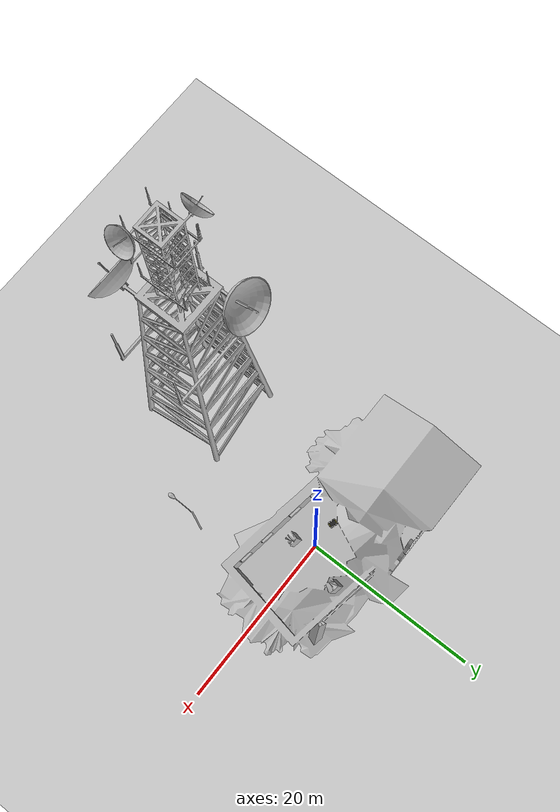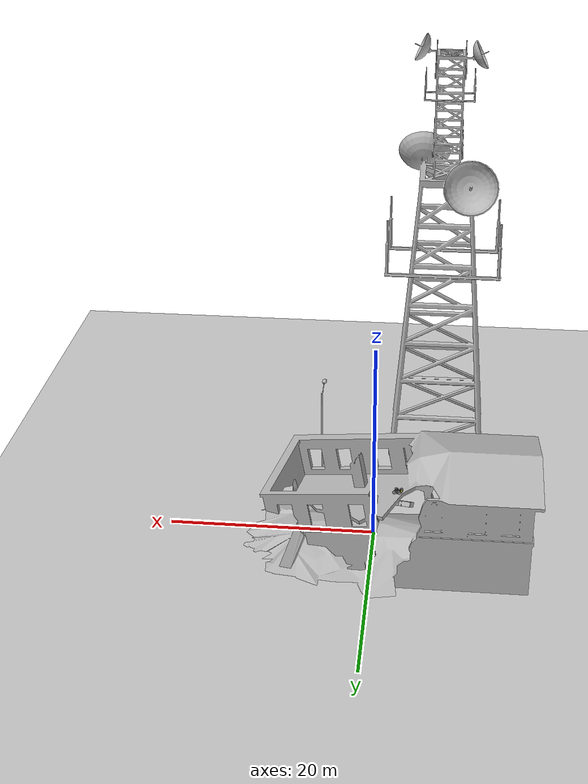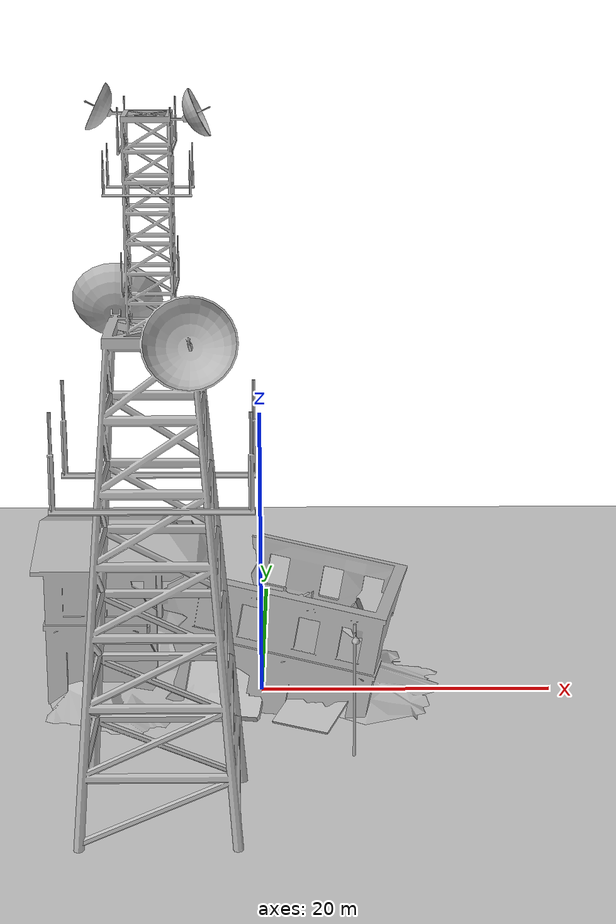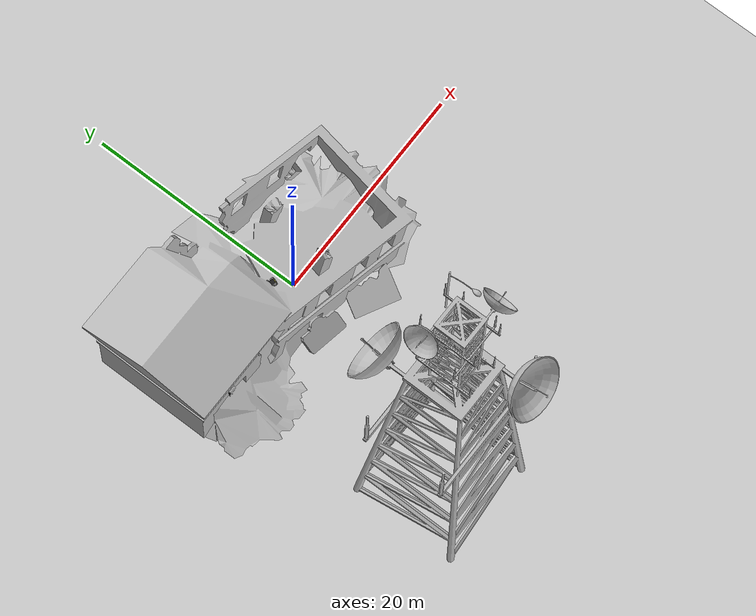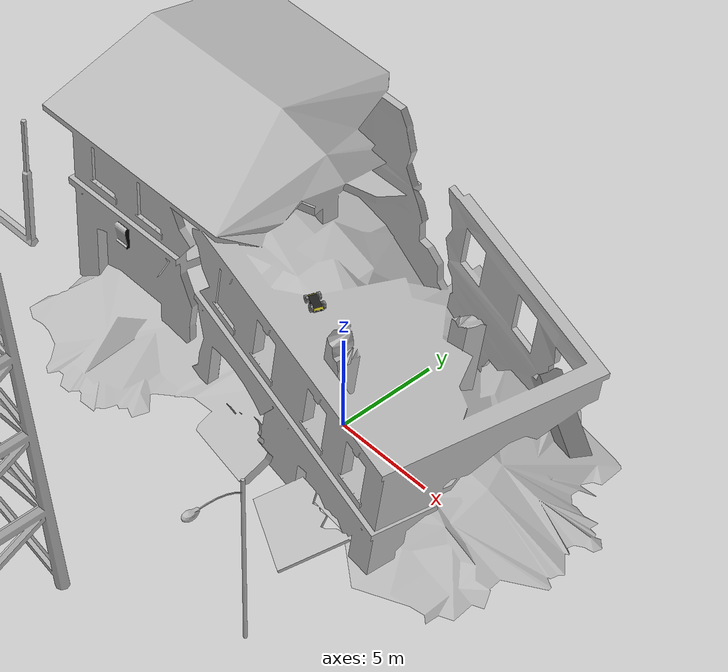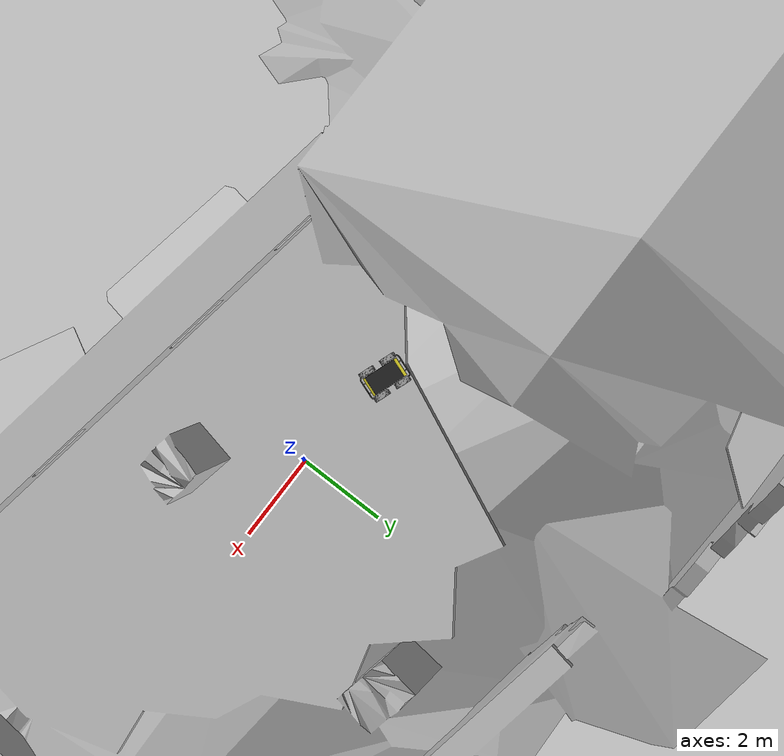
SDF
<sdf version="1.7">
 <world name="default">
  <light name="sun" type="directional">
   <pose>0 0 10 0 -0 0</pose>
   <diffuse>0.8 0.8 0.8 1</diffuse>
   <specular>0.2 0.2 0.2 1</specular>
   <attenuation>
    <range>1000</range>
    <constant>0.9</constant>
    <linear>0.01</linear>
    <quadratic>0.001</quadratic>
   </attenuation>
   <direction>-0.5 0.1 -0.9</direction>
   <spot><inner_angle>0</inner_angle><outer_angle>0</outer_angle><falloff>0</falloff></spot>
  </light>
  <model name="ground_plane">
   <static>1</static>
   <link name="link">
    <collision name="collision">
     <geometry><plane><normal>0 0 1</normal><size>100 100</size></plane></geometry>
     <surface><friction><ode><mu>100</mu><mu2>50</mu2></ode></friction></surface>
    </collision>
    <visual name="visual">
     <cast_shadows>0</cast_shadows>
     <geometry><plane><normal>0 0 1</normal><size>100 100</size></plane></geometry>
     <material>
      <script><uri>file://media/materials/scripts/gazebo.material</uri><name>Gazebo/Grey</name></script>
     </material>
    </visual>
   </link>
  </model>
  <gravity>0 0 -9.8</gravity>
  <magnetic_field>6e-06 2.3e-05 -4.2e-05</magnetic_field>
  <atmosphere type="adiabatic"/>
  <physics type="ode">
   <max_step_size>0.001</max_step_size>
   <real_time_factor>1</real_time_factor>
   <real_time_update_rate>1000</real_time_update_rate>
  </physics>
  <scene><ambient>0.4 0.4 0.4 1</ambient><background>0.7 0.7 0.7 1</background><shadows>1</shadows></scene>
  <spherical_coordinates>
   <surface_model>EARTH_WGS84</surface_model>
   <latitude_deg>0</latitude_deg>
   <longitude_deg>0</longitude_deg>
   <elevation>0</elevation>
   <heading_deg>0</heading_deg>
  </spherical_coordinates>
  <model name="collapsed_fire_station">
   <static>1</static>
   <link name="link">
    <collision name="collision">
     <geometry><mesh><uri>model://collapsed_fire_station/meshes/collapsed_fire_station.dae</uri></mesh></geometry>
    </collision>
    <visual name="visual">
     <geometry><mesh><uri>model://collapsed_fire_station/meshes/collapsed_fire_station.dae</uri></mesh></geometry>
    </visual>
   </link>
   <pose>-1.42919 1.40699 0 0 -0 0</pose>
  </model>
  <model name="radio_tower">
   <static>1</static>
   <link name="link">
    <collision name="collision">
     <geometry><mesh><uri>model://radio_tower/meshes/radio_tower.dae</uri></mesh></geometry>
    </collision>
    <visual name="visual">
     <geometry><mesh><uri>model://radio_tower/meshes/radio_tower.dae</uri></mesh></geometry>
    </visual>
   </link>
   <pose>-5.69495 -19.3136 0 0 -0 0</pose>
  </model>
  <model name="husky">
   <pose>-2.29182 0.459525 5.33981 -3.11207 -0.172044 2.79626</pose>
   <link name="base_link">
    <collision name="collision">
     <pose>0 0 0.1 0 -0 0</pose>
     <geometry><box><size>1.0074 0.5709 0.2675</size></box></geometry>
    </collision>
    <inertial>
     <mass>33.855</mass>
     <pose>-0.085613 -0.00084 0.238145 0 -0 0</pose>
     <inertia>
      <ixx>2.2343</ixx>
      <ixy>-0.023642</ixy>
      <ixz>0.275174</ixz>
      <iyy>3.42518</iyy>
      <iyz>0.00239624</iyz>
      <izz>2.1241</izz>
     </inertia>
    </inertial>
    <visual name="base">
     <geometry><mesh><uri>model://husky/meshes/base_link.stl</uri></mesh></geometry>
     <material><script><name>Gazebo/FlatBlack</name><uri>__default__</uri></script></material>
    </visual>
    <visual name="top_plate">
     <geometry><mesh><uri>model://husky/meshes/top_plate.stl</uri></mesh></geometry>
     <material><script><name>Gazebo/Yellow</name><uri>__default__</uri></script></material>
    </visual>
    <visual name="front_bumper">
     <pose>0.47 0 0.091 0 -0 0</pose>
     <geometry><mesh><uri>model://husky/meshes/bumper.stl</uri></mesh></geometry>
     <material><script><name>Gazebo/FlatBlack</name><uri>__default__</uri></script></material>
    </visual>
    <visual name="rear_bumper">
     <pose>-0.47 0 0.091 0 -0 3.141</pose>
     <geometry><mesh><uri>model://husky/meshes/bumper.stl</uri></mesh></geometry>
     <material><script><name>Gazebo/FlatBlack</name><uri>__default__</uri></script></material>
    </visual>
    <visual name="user_rail">
     <pose>0.272 0 0.245 0 -0 0</pose>
     <geometry><mesh><uri>model://husky/meshes/user_rail.stl</uri></mesh></geometry>
     <material><script><name>Gazebo/Grey</name><uri>__default__</uri></script></material>
    </visual>
   </link>
   <link name="back_left_wheel">
    <pose>-0.256 0.285475 0.035 0 -0 0</pose>
    <inertial>
     <mass>2.6357</mass>
     <inertia>
      <ixx>0.0246688</ixx>
      <ixy>0</ixy>
      <ixz>0</ixz>
      <iyy>0.0246688</iyy>
      <iyz>0</iyz>
      <izz>0.0441058</izz>
     </inertia>
    </inertial>
    <collision name="back_left_wheel_collision">
     <pose>0 0 0 -1.5707 0 0</pose>
     <geometry><cylinder><radius>0.17775</radius><length>0.1143</length></cylinder></geometry>
     <surface>
      <friction><ode><mu>100000</mu><mu2>100000</mu2><slip1>0</slip1><slip2>0</slip2></ode></friction>
     </surface>
    </collision>
    <visual name="back_left_wheel">
     <pose>0 0 0 -3.14159 0 0</pose>
     <geometry><mesh><uri>model://husky/meshes/wheel.stl</uri></mesh></geometry>
     <material><script><name>Gazebo/Grey</name><uri>__default__</uri></script></material>
    </visual>
   </link>
   <joint name="back_left_joint" type="revolute">
    <parent>base_link</parent>
    <child>back_left_wheel</child>
    <axis>
     <xyz expressed_in="__model__">0 1 0</xyz>
     <limit><lower>-1e+16</lower><upper>1e+16</upper></limit>
     <dynamics><spring_reference>0</spring_reference><spring_stiffness>0</spring_stiffness></dynamics>
    </axis>
    <physics><ode><limit><cfm>0</cfm><erp>0.9</erp></limit></ode></physics>
   </joint>
   <link name="back_right_wheel">
    <pose>-0.256 -0.285475 0.035 0 -0 0</pose>
    <inertial>
     <mass>2.6357</mass>
     <inertia>
      <ixx>0.0246688</ixx>
      <ixy>0</ixy>
      <ixz>0</ixz>
      <iyy>0.0246688</iyy>
      <iyz>0</iyz>
      <izz>0.0441058</izz>
     </inertia>
    </inertial>
    <collision name="back_right_wheel_collision">
     <pose>0 0 0 -1.5707 0 0</pose>
     <geometry><cylinder><radius>0.17775</radius><length>0.1143</length></cylinder></geometry>
     <surface>
      <friction><ode><mu>100000</mu><mu2>100000</mu2><slip1>0</slip1><slip2>0</slip2></ode></friction>
     </surface>
    </collision>
    <visual name="back_right_wheel">
     <pose>0 0 0 -3.14159 0 0</pose>
     <geometry><mesh><uri>model://husky/meshes/wheel.stl</uri></mesh></geometry>
     <material><script><name>Gazebo/Grey</name><uri>__default__</uri></script></material>
    </visual>
   </link>
   <joint name="back_right_joint" type="revolute">
    <parent>base_link</parent>
    <child>back_right_wheel</child>
    <axis>
     <xyz expressed_in="__model__">0 1 0</xyz>
     <limit><lower>-1e+16</lower><upper>1e+16</upper></limit>
     <dynamics><spring_reference>0</spring_reference><spring_stiffness>0</spring_stiffness></dynamics>
    </axis>
    <physics><ode><limit><cfm>0</cfm><erp>0.9</erp></limit></ode></physics>
   </joint>
   <link name="front_left_wheel">
    <pose>0.256 0.285475 0.035 0 -0 0</pose>
    <inertial>
     <mass>2.6357</mass>
     <inertia>
      <ixx>0.0246688</ixx>
      <ixy>0</ixy>
      <ixz>0</ixz>
      <iyy>0.0246688</iyy>
      <iyz>0</iyz>
      <izz>0.0441058</izz>
     </inertia>
    </inertial>
    <collision name="front_left_wheel_collision">
     <pose>0 0 0 -1.5707 0 0</pose>
     <geometry><cylinder><radius>0.17775</radius><length>0.1143</length></cylinder></geometry>
     <surface>
      <friction><ode><mu>100000</mu><mu2>100000</mu2><slip1>0</slip1><slip2>0</slip2></ode></friction>
     </surface>
    </collision>
    <visual name="front_left_wheel">
     <pose>0 0 0 -3.14159 0 0</pose>
     <geometry><mesh><uri>model://husky/meshes/wheel.stl</uri></mesh></geometry>
     <material><script><name>Gazebo/Grey</name><uri>__default__</uri></script></material>
    </visual>
   </link>
   <joint name="front_left_joint" type="revolute">
    <parent>base_link</parent>
    <child>front_left_wheel</child>
    <axis>
     <xyz expressed_in="__model__">0 1 0</xyz>
     <limit><lower>-1e+16</lower><upper>1e+16</upper></limit>
     <dynamics><spring_reference>0</spring_reference><spring_stiffness>0</spring_stiffness></dynamics>
    </axis>
    <physics><ode><limit><cfm>0</cfm><erp>0.9</erp></limit></ode></physics>
   </joint>
   <link name="front_right_wheel">
    <pose>0.256 -0.285475 0.035 0 -0 0</pose>
    <inertial>
     <mass>2.6357</mass>
     <inertia>
      <ixx>0.0246688</ixx>
      <ixy>0</ixy>
      <ixz>0</ixz>
      <iyy>0.0246688</iyy>
      <iyz>0</iyz>
      <izz>0.0441058</izz>
     </inertia>
    </inertial>
    <collision name="front_right_wheel_collision">
     <pose>0 0 0 -1.5707 0 0</pose>
     <geometry><cylinder><radius>0.17775</radius><length>0.1143</length></cylinder></geometry>
     <surface>
      <friction><ode><mu>100000</mu><mu2>100000</mu2><slip1>0</slip1><slip2>0</slip2></ode></friction>
     </surface>
    </collision>
    <visual name="front_right_wheel">
     <pose>0 0 0 -3.14159 0 0</pose>
     <geometry><mesh><uri>model://husky/meshes/wheel.stl</uri></mesh></geometry>
     <material><script><name>Gazebo/Grey</name><uri>__default__</uri></script></material>
    </visual>
   </link>
   <joint name="front_right_joint" type="revolute">
    <parent>base_link</parent>
    <child>front_right_wheel</child>
    <axis>
     <xyz expressed_in="__model__">0 1 0</xyz>
     <limit><lower>-1e+16</lower><upper>1e+16</upper></limit>
     <dynamics><spring_reference>0</spring_reference><spring_stiffness>0</spring_stiffness></dynamics>
    </axis>
    <physics><ode><limit><cfm>0</cfm><erp>0.9</erp></limit></ode></physics>
   </joint>
   <plugin name="husky_diff_controller" filename="libhusky_gazebo_plugins.so">
    <alwaysOn>1</alwaysOn>
    <updateRate>100.0</updateRate>
    <backLeftJoint>back_left_joint</backLeftJoint>
    <backRightJoint>back_right_joint</backRightJoint>
    <frontLeftJoint>front_left_joint</frontLeftJoint>
    <frontRightJoint>front_right_joint</frontRightJoint>
    <wheelSeparation>0.5709</wheelSeparation>
    <wheelDiameter>0.3555</wheelDiameter>
    <torque>35</torque>
   </plugin>
  </model>
  <model name="Lamp Post">
   <static>1</static>
   <link name="link">
    <collision name="collision">
     <geometry><mesh><uri>model://lamp_post/meshes/lamp_post.dae</uri><scale>3 3 3</scale></mesh></geometry>
    </collision>
    <visual name="visual">
     <geometry><mesh><uri>model://lamp_post/meshes/lamp_post.dae</uri><scale>3 3 3</scale></mesh></geometry>
    </visual>
   </link>
   <pose>6.14528 -10.9935 0 0 -0 0</pose>
  </model>
 </world>
</sdf>
